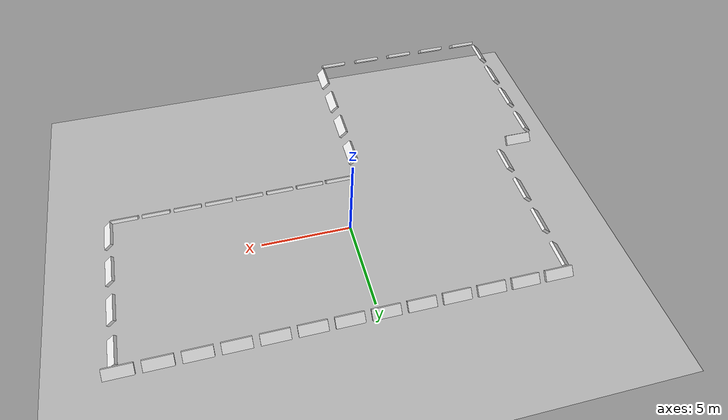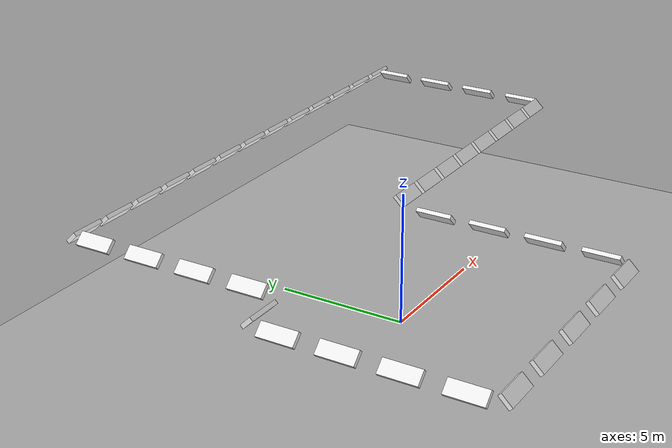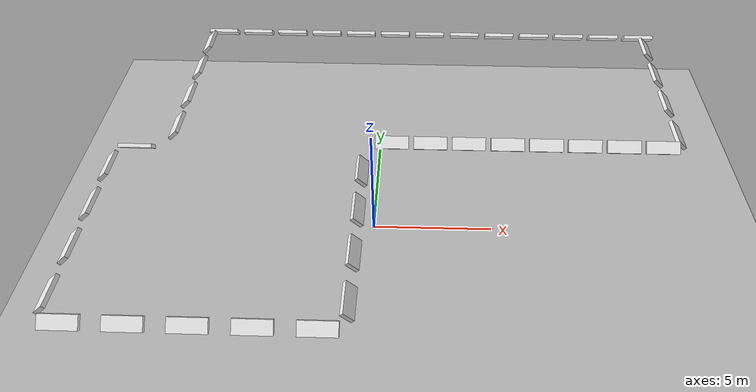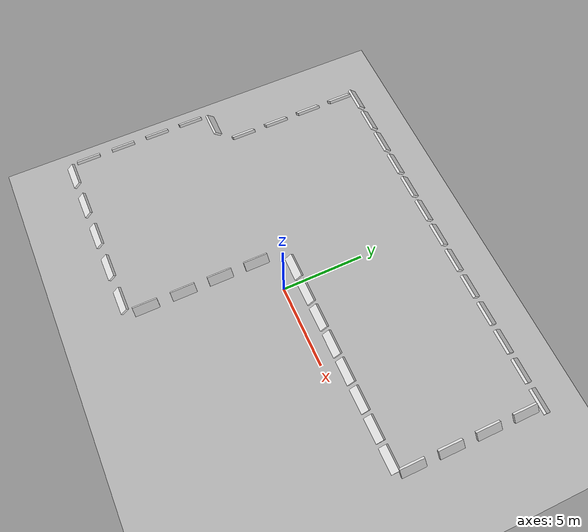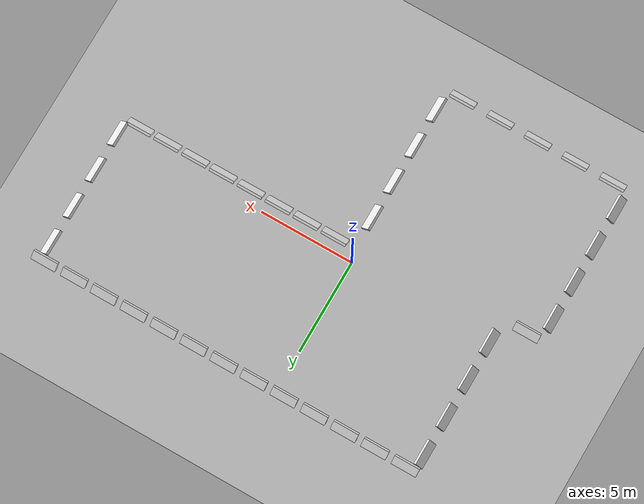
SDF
<sdf version="1.6">
 <world name="default">
  <model name="ground_plane">
   <static>1</static>
   <link name="link">
    <collision name="collision">
     <geometry><plane><normal>0 0 1</normal><size>30 25</size></plane></geometry>
     <surface><friction><ode><mu>100</mu><mu2>50</mu2></ode></friction></surface>
    </collision>
    <visual name="visual">
     <cast_shadows>0</cast_shadows>
     <geometry><plane><normal>0 0 1</normal><size>30 25</size></plane></geometry>
     <material>
      <script>
       <uri>model://ground/materials/scripts</uri>
       <uri>model://ground/materials/textures</uri>
       <name>ground</name>
      </script>
      <ambient>0.6 0.6 0.6 1</ambient>
      <diffuse>0.7 0.7 0.7 1</diffuse>
      <specular>0.2 0.2 0.2 1</specular>
     </material>
    </visual>
   </link>
  </model>
  <model name="light">
   <static>true</static>
   <link name="link_1">
    <pose>0.8 0.25 4.6 0.785 -0 0</pose>
    <visual name="visual">
     <geometry><box><size>1.3 0.5 0.15</size></box></geometry>
     <material>
      <script><name>Gazebo/White</name><uri>file://media/materials/scripts/gazebo.material</uri></script>
      <shader type="pixel"><normal_map>__default__</normal_map></shader>
      <ambient>0.8 0.8 0.8 1</ambient>
      <diffuse>1.0 1.0 1.0 1</diffuse>
      <specular>0.2 0.2 0.2 1</specular>
      <emissive>0.5 0.5 0.5 1</emissive>
     </material>
    </visual>
   </link>
   <link name="link_2">
    <pose>2.3 0.25 4.6 0.785 -0 0</pose>
    <visual name="visual">
     <geometry><box><size>1.3 0.5 0.15</size></box></geometry>
     <material>
      <script><name>Gazebo/White</name><uri>file://media/materials/scripts/gazebo.material</uri></script>
      <shader type="pixel"><normal_map>__default__</normal_map></shader>
      <ambient>0.8 0.8 0.8 1</ambient>
      <diffuse>1.0 1.0 1.0 1</diffuse>
      <specular>0.2 0.2 0.2 1</specular>
      <emissive>0.5 0.5 0.5 1</emissive>
     </material>
    </visual>
   </link>
   <link name="link_3">
    <pose>3.8 0.25 4.6 0.785 -0 0</pose>
    <visual name="visual">
     <geometry><box><size>1.3 0.5 0.15</size></box></geometry>
     <material>
      <script><name>Gazebo/White</name><uri>file://media/materials/scripts/gazebo.material</uri></script>
      <shader type="pixel"><normal_map>__default__</normal_map></shader>
      <ambient>0.8 0.8 0.8 1</ambient>
      <diffuse>1.0 1.0 1.0 1</diffuse>
      <specular>0.2 0.2 0.2 1</specular>
      <emissive>0.5 0.5 0.5 1</emissive>
     </material>
    </visual>
   </link>
   <link name="link_4">
    <pose>5.3 0.25 4.6 0.785 -0 0</pose>
    <visual name="visual">
     <geometry><box><size>1.3 0.5 0.15</size></box></geometry>
     <material>
      <script><name>Gazebo/White</name><uri>file://media/materials/scripts/gazebo.material</uri></script>
      <shader type="pixel"><normal_map>__default__</normal_map></shader>
      <ambient>0.8 0.8 0.8 1</ambient>
      <diffuse>1.0 1.0 1.0 1</diffuse>
      <specular>0.2 0.2 0.2 1</specular>
      <emissive>0.5 0.5 0.5 1</emissive>
     </material>
    </visual>
   </link>
   <link name="link_5">
    <pose>6.8 0.25 4.6 0.785 -0 0</pose>
    <visual name="visual">
     <geometry><box><size>1.3 0.5 0.15</size></box></geometry>
     <material>
      <script><name>Gazebo/White</name><uri>file://media/materials/scripts/gazebo.material</uri></script>
      <shader type="pixel"><normal_map>__default__</normal_map></shader>
      <ambient>0.8 0.8 0.8 1</ambient>
      <diffuse>1.0 1.0 1.0 1</diffuse>
      <specular>0.2 0.2 0.2 1</specular>
      <emissive>0.5 0.5 0.5 1</emissive>
     </material>
    </visual>
   </link>
   <link name="link_6">
    <pose>8.3 0.25 4.6 0.785 -0 0</pose>
    <visual name="visual">
     <geometry><box><size>1.3 0.5 0.15</size></box></geometry>
     <material>
      <script><name>Gazebo/White</name><uri>file://media/materials/scripts/gazebo.material</uri></script>
      <shader type="pixel"><normal_map>__default__</normal_map></shader>
      <ambient>0.8 0.8 0.8 1</ambient>
      <diffuse>1.0 1.0 1.0 1</diffuse>
      <specular>0.2 0.2 0.2 1</specular>
      <emissive>0.5 0.5 0.5 1</emissive>
     </material>
    </visual>
   </link>
   <link name="link_7">
    <pose>9.8 0.25 4.6 0.785 -0 0</pose>
    <visual name="visual">
     <geometry><box><size>1.3 0.5 0.15</size></box></geometry>
     <material>
      <script><name>Gazebo/White</name><uri>file://media/materials/scripts/gazebo.material</uri></script>
      <shader type="pixel"><normal_map>__default__</normal_map></shader>
      <ambient>0.8 0.8 0.8 1</ambient>
      <diffuse>1.0 1.0 1.0 1</diffuse>
      <specular>0.2 0.2 0.2 1</specular>
      <emissive>0.5 0.5 0.5 1</emissive>
     </material>
    </visual>
   </link>
   <link name="link_8">
    <pose>11.3 0.25 4.6 0.785 -0 0</pose>
    <visual name="visual">
     <geometry><box><size>1.3 0.5 0.15</size></box></geometry>
     <material>
      <script><name>Gazebo/White</name><uri>file://media/materials/scripts/gazebo.material</uri></script>
      <shader type="pixel"><normal_map>__default__</normal_map></shader>
      <ambient>0.8 0.8 0.8 1</ambient>
      <diffuse>1.0 1.0 1.0 1</diffuse>
      <specular>0.2 0.2 0.2 1</specular>
      <emissive>0.5 0.5 0.5 1</emissive>
     </material>
    </visual>
   </link>
   <link name="link_9">
    <pose>12.05 1.05 4.6 0.785 -0 1.5707</pose>
    <visual name="visual">
     <geometry><box><size>1.3 0.5 0.15</size></box></geometry>
     <material>
      <script><name>Gazebo/White</name><uri>file://media/materials/scripts/gazebo.material</uri></script>
      <shader type="pixel"><normal_map>__default__</normal_map></shader>
      <ambient>0.8 0.8 0.8 1</ambient>
      <diffuse>1.0 1.0 1.0 1</diffuse>
      <specular>0.2 0.2 0.2 1</specular>
      <emissive>0.5 0.5 0.5 1</emissive>
     </material>
    </visual>
   </link>
   <link name="link_10">
    <pose>12.05 3.05 4.6 0.785 -0 1.5707</pose>
    <visual name="visual">
     <geometry><box><size>1.3 0.5 0.15</size></box></geometry>
     <material>
      <script><name>Gazebo/White</name><uri>file://media/materials/scripts/gazebo.material</uri></script>
      <shader type="pixel"><normal_map>__default__</normal_map></shader>
      <ambient>0.8 0.8 0.8 1</ambient>
      <diffuse>1.0 1.0 1.0 1</diffuse>
      <specular>0.2 0.2 0.2 1</specular>
      <emissive>0.5 0.5 0.5 1</emissive>
     </material>
    </visual>
   </link>
   <link name="link_11">
    <pose>12.05 5.05 4.6 0.785 -0 1.5707</pose>
    <visual name="visual">
     <geometry><box><size>1.3 0.5 0.15</size></box></geometry>
     <material>
      <script><name>Gazebo/White</name><uri>file://media/materials/scripts/gazebo.material</uri></script>
      <shader type="pixel"><normal_map>__default__</normal_map></shader>
      <ambient>0.8 0.8 0.8 1</ambient>
      <diffuse>1.0 1.0 1.0 1</diffuse>
      <specular>0.2 0.2 0.2 1</specular>
      <emissive>0.5 0.5 0.5 1</emissive>
     </material>
    </visual>
   </link>
   <link name="link_12">
    <pose>12.05 7.05 4.6 0.785 -0 1.5707</pose>
    <visual name="visual">
     <geometry><box><size>1.3 0.5 0.15</size></box></geometry>
     <material>
      <script><name>Gazebo/White</name><uri>file://media/materials/scripts/gazebo.material</uri></script>
      <shader type="pixel"><normal_map>__default__</normal_map></shader>
      <ambient>0.8 0.8 0.8 1</ambient>
      <diffuse>1.0 1.0 1.0 1</diffuse>
      <specular>0.2 0.2 0.2 1</specular>
      <emissive>0.5 0.5 0.5 1</emissive>
     </material>
    </visual>
   </link>
   <link name="link_13">
    <pose>11.85 7.95 4.6 0.785 -0 3.14159</pose>
    <visual name="visual">
     <geometry><box><size>1.3 0.5 0.15</size></box></geometry>
     <material>
      <script><name>Gazebo/White</name><uri>file://media/materials/scripts/gazebo.material</uri></script>
      <shader type="pixel"><normal_map>__default__</normal_map></shader>
      <ambient>0.8 0.8 0.8 1</ambient>
      <diffuse>1.0 1.0 1.0 1</diffuse>
      <specular>0.2 0.2 0.2 1</specular>
      <emissive>0.5 0.5 0.5 1</emissive>
     </material>
    </visual>
   </link>
   <link name="link_14">
    <pose>10.25 7.95 4.6 0.785 -0 3.14159</pose>
    <visual name="visual">
     <geometry><box><size>1.3 0.5 0.15</size></box></geometry>
     <material>
      <script><name>Gazebo/White</name><uri>file://media/materials/scripts/gazebo.material</uri></script>
      <shader type="pixel"><normal_map>__default__</normal_map></shader>
      <ambient>0.8 0.8 0.8 1</ambient>
      <diffuse>1.0 1.0 1.0 1</diffuse>
      <specular>0.2 0.2 0.2 1</specular>
      <emissive>0.5 0.5 0.5 1</emissive>
     </material>
    </visual>
   </link>
   <link name="link_15">
    <pose>8.65 7.95 4.6 0.785 -0 3.14159</pose>
    <visual name="visual">
     <geometry><box><size>1.3 0.5 0.15</size></box></geometry>
     <material>
      <script><name>Gazebo/White</name><uri>file://media/materials/scripts/gazebo.material</uri></script>
      <shader type="pixel"><normal_map>__default__</normal_map></shader>
      <ambient>0.8 0.8 0.8 1</ambient>
      <diffuse>1.0 1.0 1.0 1</diffuse>
      <specular>0.2 0.2 0.2 1</specular>
      <emissive>0.5 0.5 0.5 1</emissive>
     </material>
    </visual>
   </link>
   <link name="link_16">
    <pose>7.05 7.95 4.6 0.785 -0 3.14159</pose>
    <visual name="visual">
     <geometry><box><size>1.3 0.5 0.15</size></box></geometry>
     <material>
      <script><name>Gazebo/White</name><uri>file://media/materials/scripts/gazebo.material</uri></script>
      <shader type="pixel"><normal_map>__default__</normal_map></shader>
      <ambient>0.8 0.8 0.8 1</ambient>
      <diffuse>1.0 1.0 1.0 1</diffuse>
      <specular>0.2 0.2 0.2 1</specular>
      <emissive>0.5 0.5 0.5 1</emissive>
     </material>
    </visual>
   </link>
   <link name="link_17">
    <pose>5.45 7.95 4.6 0.785 -0 3.14159</pose>
    <visual name="visual">
     <geometry><box><size>1.3 0.5 0.15</size></box></geometry>
     <material>
      <script><name>Gazebo/White</name><uri>file://media/materials/scripts/gazebo.material</uri></script>
      <shader type="pixel"><normal_map>__default__</normal_map></shader>
      <ambient>0.8 0.8 0.8 1</ambient>
      <diffuse>1.0 1.0 1.0 1</diffuse>
      <specular>0.2 0.2 0.2 1</specular>
      <emissive>0.5 0.5 0.5 1</emissive>
     </material>
    </visual>
   </link>
   <link name="link_18">
    <pose>3.85 7.95 4.6 0.785 -0 3.14159</pose>
    <visual name="visual">
     <geometry><box><size>1.3 0.5 0.15</size></box></geometry>
     <material>
      <script><name>Gazebo/White</name><uri>file://media/materials/scripts/gazebo.material</uri></script>
      <shader type="pixel"><normal_map>__default__</normal_map></shader>
      <ambient>0.8 0.8 0.8 1</ambient>
      <diffuse>1.0 1.0 1.0 1</diffuse>
      <specular>0.2 0.2 0.2 1</specular>
      <emissive>0.5 0.5 0.5 1</emissive>
     </material>
    </visual>
   </link>
   <link name="link_19">
    <pose>2.25 7.95 4.6 0.785 -0 3.14159</pose>
    <visual name="visual">
     <geometry><box><size>1.3 0.5 0.15</size></box></geometry>
     <material>
      <script><name>Gazebo/White</name><uri>file://media/materials/scripts/gazebo.material</uri></script>
      <shader type="pixel"><normal_map>__default__</normal_map></shader>
      <ambient>0.8 0.8 0.8 1</ambient>
      <diffuse>1.0 1.0 1.0 1</diffuse>
      <specular>0.2 0.2 0.2 1</specular>
      <emissive>0.5 0.5 0.5 1</emissive>
     </material>
    </visual>
   </link>
   <link name="link_20">
    <pose>0.65 7.95 4.6 0.785 -0 3.14159</pose>
    <visual name="visual">
     <geometry><box><size>1.3 0.5 0.15</size></box></geometry>
     <material>
      <script><name>Gazebo/White</name><uri>file://media/materials/scripts/gazebo.material</uri></script>
      <shader type="pixel"><normal_map>__default__</normal_map></shader>
      <ambient>0.8 0.8 0.8 1</ambient>
      <diffuse>1.0 1.0 1.0 1</diffuse>
      <specular>0.2 0.2 0.2 1</specular>
      <emissive>0.5 0.5 0.5 1</emissive>
     </material>
    </visual>
   </link>
   <link name="link_21">
    <pose>-0.95 7.95 4.6 0.785 -0 3.14159</pose>
    <visual name="visual">
     <geometry><box><size>1.3 0.5 0.15</size></box></geometry>
     <material>
      <script><name>Gazebo/White</name><uri>file://media/materials/scripts/gazebo.material</uri></script>
      <shader type="pixel"><normal_map>__default__</normal_map></shader>
      <ambient>0.8 0.8 0.8 1</ambient>
      <diffuse>1.0 1.0 1.0 1</diffuse>
      <specular>0.2 0.2 0.2 1</specular>
      <emissive>0.5 0.5 0.5 1</emissive>
     </material>
    </visual>
   </link>
   <link name="link_22">
    <pose>-2.55 7.95 4.6 0.785 -0 3.14159</pose>
    <visual name="visual">
     <geometry><box><size>1.3 0.5 0.15</size></box></geometry>
     <material>
      <script><name>Gazebo/White</name><uri>file://media/materials/scripts/gazebo.material</uri></script>
      <shader type="pixel"><normal_map>__default__</normal_map></shader>
      <ambient>0.8 0.8 0.8 1</ambient>
      <diffuse>1.0 1.0 1.0 1</diffuse>
      <specular>0.2 0.2 0.2 1</specular>
      <emissive>0.5 0.5 0.5 1</emissive>
     </material>
    </visual>
   </link>
   <link name="link_23">
    <pose>-4.15 7.95 4.6 0.785 -0 3.14159</pose>
    <visual name="visual">
     <geometry><box><size>1.3 0.5 0.15</size></box></geometry>
     <material>
      <script><name>Gazebo/White</name><uri>file://media/materials/scripts/gazebo.material</uri></script>
      <shader type="pixel"><normal_map>__default__</normal_map></shader>
      <ambient>0.8 0.8 0.8 1</ambient>
      <diffuse>1.0 1.0 1.0 1</diffuse>
      <specular>0.2 0.2 0.2 1</specular>
      <emissive>0.5 0.5 0.5 1</emissive>
     </material>
    </visual>
   </link>
   <link name="link_24">
    <pose>-5.75 7.95 4.6 0.785 -0 3.14159</pose>
    <visual name="visual">
     <geometry><box><size>1.3 0.5 0.15</size></box></geometry>
     <material>
      <script><name>Gazebo/White</name><uri>file://media/materials/scripts/gazebo.material</uri></script>
      <shader type="pixel"><normal_map>__default__</normal_map></shader>
      <ambient>0.8 0.8 0.8 1</ambient>
      <diffuse>1.0 1.0 1.0 1</diffuse>
      <specular>0.2 0.2 0.2 1</specular>
      <emissive>0.5 0.5 0.5 1</emissive>
     </material>
    </visual>
   </link>
   <link name="link_25">
    <pose>-7.35 7.95 4.6 0.785 -0 3.14159</pose>
    <visual name="visual">
     <geometry><box><size>1.3 0.5 0.15</size></box></geometry>
     <material>
      <script><name>Gazebo/White</name><uri>file://media/materials/scripts/gazebo.material</uri></script>
      <shader type="pixel"><normal_map>__default__</normal_map></shader>
      <ambient>0.8 0.8 0.8 1</ambient>
      <diffuse>1.0 1.0 1.0 1</diffuse>
      <specular>0.2 0.2 0.2 1</specular>
      <emissive>0.5 0.5 0.5 1</emissive>
     </material>
    </visual>
   </link>
   <link name="link_26">
    <pose>-7.85 1.05 4.6 0.785 -0 -1.5707</pose>
    <visual name="visual">
     <geometry><box><size>1.3 0.5 0.15</size></box></geometry>
     <material>
      <script><name>Gazebo/White</name><uri>file://media/materials/scripts/gazebo.material</uri></script>
      <shader type="pixel"><normal_map>__default__</normal_map></shader>
      <ambient>0.8 0.8 0.8 1</ambient>
      <diffuse>1.0 1.0 1.0 1</diffuse>
      <specular>0.2 0.2 0.2 1</specular>
      <emissive>0.5 0.5 0.5 1</emissive>
     </material>
    </visual>
   </link>
   <link name="link_27">
    <pose>-7.85 3.05 4.6 0.785 -0 -1.5707</pose>
    <visual name="visual">
     <geometry><box><size>1.3 0.5 0.15</size></box></geometry>
     <material>
      <script><name>Gazebo/White</name><uri>file://media/materials/scripts/gazebo.material</uri></script>
      <shader type="pixel"><normal_map>__default__</normal_map></shader>
      <ambient>0.8 0.8 0.8 1</ambient>
      <diffuse>1.0 1.0 1.0 1</diffuse>
      <specular>0.2 0.2 0.2 1</specular>
      <emissive>0.5 0.5 0.5 1</emissive>
     </material>
    </visual>
   </link>
   <link name="link_28">
    <pose>-7.85 5.05 4.6 0.785 -0 -1.5707</pose>
    <visual name="visual">
     <geometry><box><size>1.3 0.5 0.15</size></box></geometry>
     <material>
      <script><name>Gazebo/White</name><uri>file://media/materials/scripts/gazebo.material</uri></script>
      <shader type="pixel"><normal_map>__default__</normal_map></shader>
      <ambient>0.8 0.8 0.8 1</ambient>
      <diffuse>1.0 1.0 1.0 1</diffuse>
      <specular>0.2 0.2 0.2 1</specular>
      <emissive>0.5 0.5 0.5 1</emissive>
     </material>
    </visual>
   </link>
   <link name="link_29">
    <pose>-7.85 7.05 4.6 0.785 -0 -1.5707</pose>
    <visual name="visual">
     <geometry><box><size>1.3 0.5 0.15</size></box></geometry>
     <material>
      <script><name>Gazebo/White</name><uri>file://media/materials/scripts/gazebo.material</uri></script>
      <shader type="pixel"><normal_map>__default__</normal_map></shader>
      <ambient>0.8 0.8 0.8 1</ambient>
      <diffuse>1.0 1.0 1.0 1</diffuse>
      <specular>0.2 0.2 0.2 1</specular>
      <emissive>0.5 0.5 0.5 1</emissive>
     </material>
    </visual>
   </link>
   <link name="link_30">
    <pose>-9.1 -0.25 4.6 0.785 -0 3.14159</pose>
    <visual name="visual">
     <geometry><box><size>1.3 0.5 0.15</size></box></geometry>
     <material>
      <script><name>Gazebo/White</name><uri>file://media/materials/scripts/gazebo.material</uri></script>
      <shader type="pixel"><normal_map>__default__</normal_map></shader>
      <ambient>0.8 0.8 0.8 1</ambient>
      <diffuse>1.0 1.0 1.0 1</diffuse>
      <specular>0.2 0.2 0.2 1</specular>
      <emissive>0.5 0.5 0.5 1</emissive>
     </material>
    </visual>
   </link>
   <link name="link_31">
    <pose>-0.25 -7.4 4.6 0.785 -0 1.5707</pose>
    <visual name="visual">
     <geometry><box><size>1.3 0.5 0.15</size></box></geometry>
     <material>
      <script><name>Gazebo/White</name><uri>file://media/materials/scripts/gazebo.material</uri></script>
      <shader type="pixel"><normal_map>__default__</normal_map></shader>
      <ambient>0.8 0.8 0.8 1</ambient>
      <diffuse>1.0 1.0 1.0 1</diffuse>
      <specular>0.2 0.2 0.2 1</specular>
      <emissive>0.5 0.5 0.5 1</emissive>
     </material>
    </visual>
   </link>
   <link name="link_32">
    <pose>-0.25 -5.4 4.6 0.785 -0 1.5707</pose>
    <visual name="visual">
     <geometry><box><size>1.3 0.5 0.15</size></box></geometry>
     <material>
      <script><name>Gazebo/White</name><uri>file://media/materials/scripts/gazebo.material</uri></script>
      <shader type="pixel"><normal_map>__default__</normal_map></shader>
      <ambient>0.8 0.8 0.8 1</ambient>
      <diffuse>1.0 1.0 1.0 1</diffuse>
      <specular>0.2 0.2 0.2 1</specular>
      <emissive>0.5 0.5 0.5 1</emissive>
     </material>
    </visual>
   </link>
   <link name="link_33">
    <pose>-0.25 -3.4 4.6 0.785 -0 1.5707</pose>
    <visual name="visual">
     <geometry><box><size>1.3 0.5 0.15</size></box></geometry>
     <material>
      <script><name>Gazebo/White</name><uri>file://media/materials/scripts/gazebo.material</uri></script>
      <shader type="pixel"><normal_map>__default__</normal_map></shader>
      <ambient>0.8 0.8 0.8 1</ambient>
      <diffuse>1.0 1.0 1.0 1</diffuse>
      <specular>0.2 0.2 0.2 1</specular>
      <emissive>0.5 0.5 0.5 1</emissive>
     </material>
    </visual>
   </link>
   <link name="link_34">
    <pose>-0.25 -1.4 4.6 0.785 -0 1.5707</pose>
    <visual name="visual">
     <geometry><box><size>1.3 0.5 0.15</size></box></geometry>
     <material>
      <script><name>Gazebo/White</name><uri>file://media/materials/scripts/gazebo.material</uri></script>
      <shader type="pixel"><normal_map>__default__</normal_map></shader>
      <ambient>0.8 0.8 0.8 1</ambient>
      <diffuse>1.0 1.0 1.0 1</diffuse>
      <specular>0.2 0.2 0.2 1</specular>
      <emissive>0.5 0.5 0.5 1</emissive>
     </material>
    </visual>
   </link>
   <link name="link_35">
    <pose>-9.85 -7.4 4.6 0.785 -0 -1.5707</pose>
    <visual name="visual">
     <geometry><box><size>1.3 0.5 0.15</size></box></geometry>
     <material>
      <script><name>Gazebo/White</name><uri>file://media/materials/scripts/gazebo.material</uri></script>
      <shader type="pixel"><normal_map>__default__</normal_map></shader>
      <ambient>0.8 0.8 0.8 1</ambient>
      <diffuse>1.0 1.0 1.0 1</diffuse>
      <specular>0.2 0.2 0.2 1</specular>
      <emissive>0.5 0.5 0.5 1</emissive>
     </material>
    </visual>
   </link>
   <link name="link_36">
    <pose>-9.85 -5.4 4.6 0.785 -0 -1.5707</pose>
    <visual name="visual">
     <geometry><box><size>1.3 0.5 0.15</size></box></geometry>
     <material>
      <script><name>Gazebo/White</name><uri>file://media/materials/scripts/gazebo.material</uri></script>
      <shader type="pixel"><normal_map>__default__</normal_map></shader>
      <ambient>0.8 0.8 0.8 1</ambient>
      <diffuse>1.0 1.0 1.0 1</diffuse>
      <specular>0.2 0.2 0.2 1</specular>
      <emissive>0.5 0.5 0.5 1</emissive>
     </material>
    </visual>
   </link>
   <link name="link_37">
    <pose>-9.85 -3.4 4.6 0.785 -0 -1.5707</pose>
    <visual name="visual">
     <geometry><box><size>1.3 0.5 0.15</size></box></geometry>
     <material>
      <script><name>Gazebo/White</name><uri>file://media/materials/scripts/gazebo.material</uri></script>
      <shader type="pixel"><normal_map>__default__</normal_map></shader>
      <ambient>0.8 0.8 0.8 1</ambient>
      <diffuse>1.0 1.0 1.0 1</diffuse>
      <specular>0.2 0.2 0.2 1</specular>
      <emissive>0.5 0.5 0.5 1</emissive>
     </material>
    </visual>
   </link>
   <link name="link_38">
    <pose>-9.85 -1.4 4.6 0.785 -0 -1.5707</pose>
    <visual name="visual">
     <geometry><box><size>1.3 0.5 0.15</size></box></geometry>
     <material>
      <script><name>Gazebo/White</name><uri>file://media/materials/scripts/gazebo.material</uri></script>
      <shader type="pixel"><normal_map>__default__</normal_map></shader>
      <ambient>0.8 0.8 0.8 1</ambient>
      <diffuse>1.0 1.0 1.0 1</diffuse>
      <specular>0.2 0.2 0.2 1</specular>
      <emissive>0.5 0.5 0.5 1</emissive>
     </material>
    </visual>
   </link>
   <link name="link_39">
    <pose>-9.1 -8.45 4.6 0.785 -0 0</pose>
    <visual name="visual">
     <geometry><box><size>1.3 0.5 0.15</size></box></geometry>
     <material>
      <script><name>Gazebo/White</name><uri>file://media/materials/scripts/gazebo.material</uri></script>
      <shader type="pixel"><normal_map>__default__</normal_map></shader>
      <ambient>0.8 0.8 0.8 1</ambient>
      <diffuse>1.0 1.0 1.0 1</diffuse>
      <specular>0.2 0.2 0.2 1</specular>
      <emissive>0.5 0.5 0.5 1</emissive>
     </material>
    </visual>
   </link>
   <link name="link_40">
    <pose>-7.1 -8.45 4.6 0.785 -0 0</pose>
    <visual name="visual">
     <geometry><box><size>1.3 0.5 0.15</size></box></geometry>
     <material>
      <script><name>Gazebo/White</name><uri>file://media/materials/scripts/gazebo.material</uri></script>
      <shader type="pixel"><normal_map>__default__</normal_map></shader>
      <ambient>0.8 0.8 0.8 1</ambient>
      <diffuse>1.0 1.0 1.0 1</diffuse>
      <specular>0.2 0.2 0.2 1</specular>
      <emissive>0.5 0.5 0.5 1</emissive>
     </material>
    </visual>
   </link>
   <link name="link_41">
    <pose>-5.1 -8.45 4.6 0.785 -0 0</pose>
    <visual name="visual">
     <geometry><box><size>1.3 0.5 0.15</size></box></geometry>
     <material>
      <script><name>Gazebo/White</name><uri>file://media/materials/scripts/gazebo.material</uri></script>
      <shader type="pixel"><normal_map>__default__</normal_map></shader>
      <ambient>0.8 0.8 0.8 1</ambient>
      <diffuse>1.0 1.0 1.0 1</diffuse>
      <specular>0.2 0.2 0.2 1</specular>
      <emissive>0.5 0.5 0.5 1</emissive>
     </material>
    </visual>
   </link>
   <link name="link_42">
    <pose>-3.1 -8.45 4.6 0.785 -0 0</pose>
    <visual name="visual">
     <geometry><box><size>1.3 0.5 0.15</size></box></geometry>
     <material>
      <script><name>Gazebo/White</name><uri>file://media/materials/scripts/gazebo.material</uri></script>
      <shader type="pixel"><normal_map>__default__</normal_map></shader>
      <ambient>0.8 0.8 0.8 1</ambient>
      <diffuse>1.0 1.0 1.0 1</diffuse>
      <specular>0.2 0.2 0.2 1</specular>
      <emissive>0.5 0.5 0.5 1</emissive>
     </material>
    </visual>
   </link>
   <link name="link_43">
    <pose>-1.1 -8.45 4.6 0.785 -0 0</pose>
    <visual name="visual">
     <geometry><box><size>1.3 0.5 0.15</size></box></geometry>
     <material>
      <script><name>Gazebo/White</name><uri>file://media/materials/scripts/gazebo.material</uri></script>
      <shader type="pixel"><normal_map>__default__</normal_map></shader>
      <ambient>0.8 0.8 0.8 1</ambient>
      <diffuse>1.0 1.0 1.0 1</diffuse>
      <specular>0.2 0.2 0.2 1</specular>
      <emissive>0.5 0.5 0.5 1</emissive>
     </material>
    </visual>
   </link>
   <static>0</static>
  </model>
 </world>
</sdf>
